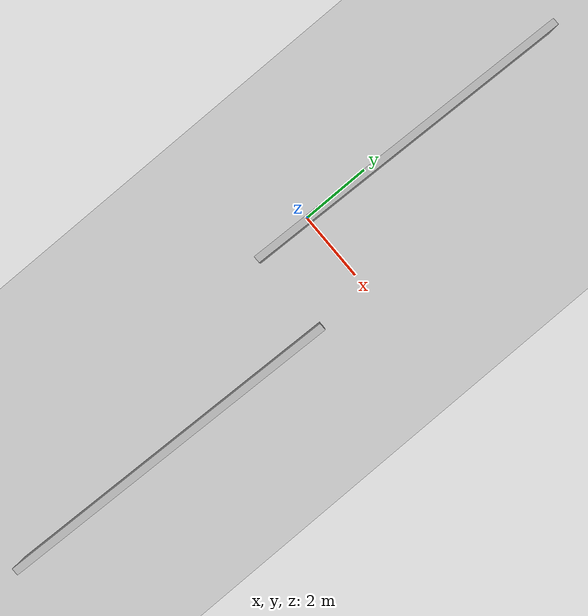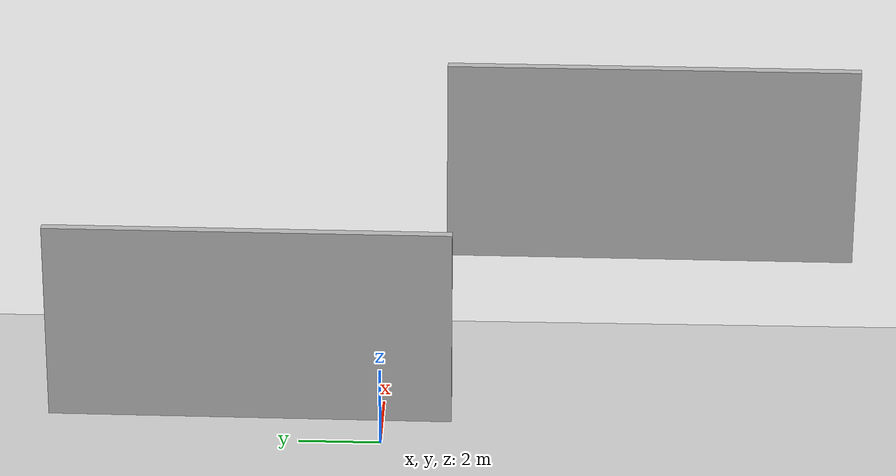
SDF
<sdf version="1.6">
 <world name="default">
  <model name="ground_plane">
   <static>1</static>
   <link name="link">
    <collision name="collision">
     <geometry><plane><normal>0 0 1</normal><size>100 100</size></plane></geometry>
     <surface><friction><ode><mu>100</mu><mu2>50</mu2></ode></friction></surface>
    </collision>
    <visual name="visual">
     <cast_shadows>0</cast_shadows>
     <geometry><plane><normal>0 0 1</normal><size>100 100</size></plane></geometry>
     <material>
      <script><uri>file://media/materials/scripts/gazebo.material</uri><name>Gazebo/Grey</name></script>
     </material>
    </visual>
   </link>
  </model>
  <model name="moon_wall">
   <static>1</static>
   <link name="link">
    <visual name="visual">
     <geometry><mesh><uri>model://moon_wall/meshes/moon_wall.dae</uri></mesh></geometry>
    </visual>
   </link>
   <pose>2.11535 -7.49609 3.98486 0 -0 0</pose>
  </model>
  <model name="moon_wall_good">
   <link name="body">
    <pose>8.61263 6.34128 0.564838 0 -0 0</pose>
    <inertial>
     <mass>1</mass>
     <inertia><ixx>1</ixx><ixy>0</ixy><ixz>0</ixz><iyy>1</iyy><iyz>0</iyz><izz>1</izz></inertia>
    </inertial>
    <visual name="visual">
     <geometry><mesh><uri>file://moon_wall_big.dae</uri></mesh></geometry>
     <material><shader type="pixel"><normal_map>__default__</normal_map></shader></material>
    </visual>
    <collision name="collision_0">
     <geometry><box><size>1 1 1</size></box></geometry>
     <surface>
      <friction>
       <ode><mu>1</mu><mu2>1</mu2><fdir1>0 0 0</fdir1><slip1>0</slip1><slip2>0</slip2></ode>
       <torsional>
        <coefficient>1</coefficient>
        <patch_radius>0</patch_radius>
        <surface_radius>0</surface_radius>
        <use_patch_radius>1</use_patch_radius>
        <ode><slip>0</slip></ode>
       </torsional>
      </friction>
      <bounce><restitution_coefficient>0</restitution_coefficient><threshold>1e+06</threshold></bounce>
      <contact>
       <collide_without_contact>0</collide_without_contact>
       <collide_without_contact_bitmask>1</collide_without_contact_bitmask>
       <collide_bitmask>1</collide_bitmask>
       <ode>
        <soft_cfm>0</soft_cfm>
        <soft_erp>0.2</soft_erp>
        <kp>1e+13</kp>
        <kd>1</kd>
        <max_vel>0.01</max_vel>
        <min_depth>0</min_depth>
       </ode>
       <bullet>
        <split_impulse>1</split_impulse>
        <split_impulse_penetration_threshold>-0.01</split_impulse_penetration_threshold>
        <soft_cfm>0</soft_cfm>
        <soft_erp>0.2</soft_erp>
        <kp>1e+13</kp>
        <kd>1</kd>
       </bullet>
      </contact>
     </surface>
    </collision>
   </link>
   <static>1</static>
   <pose>-8.58623 -4.19283 0 0 -0 0</pose>
  </model>
 </world>
</sdf>
